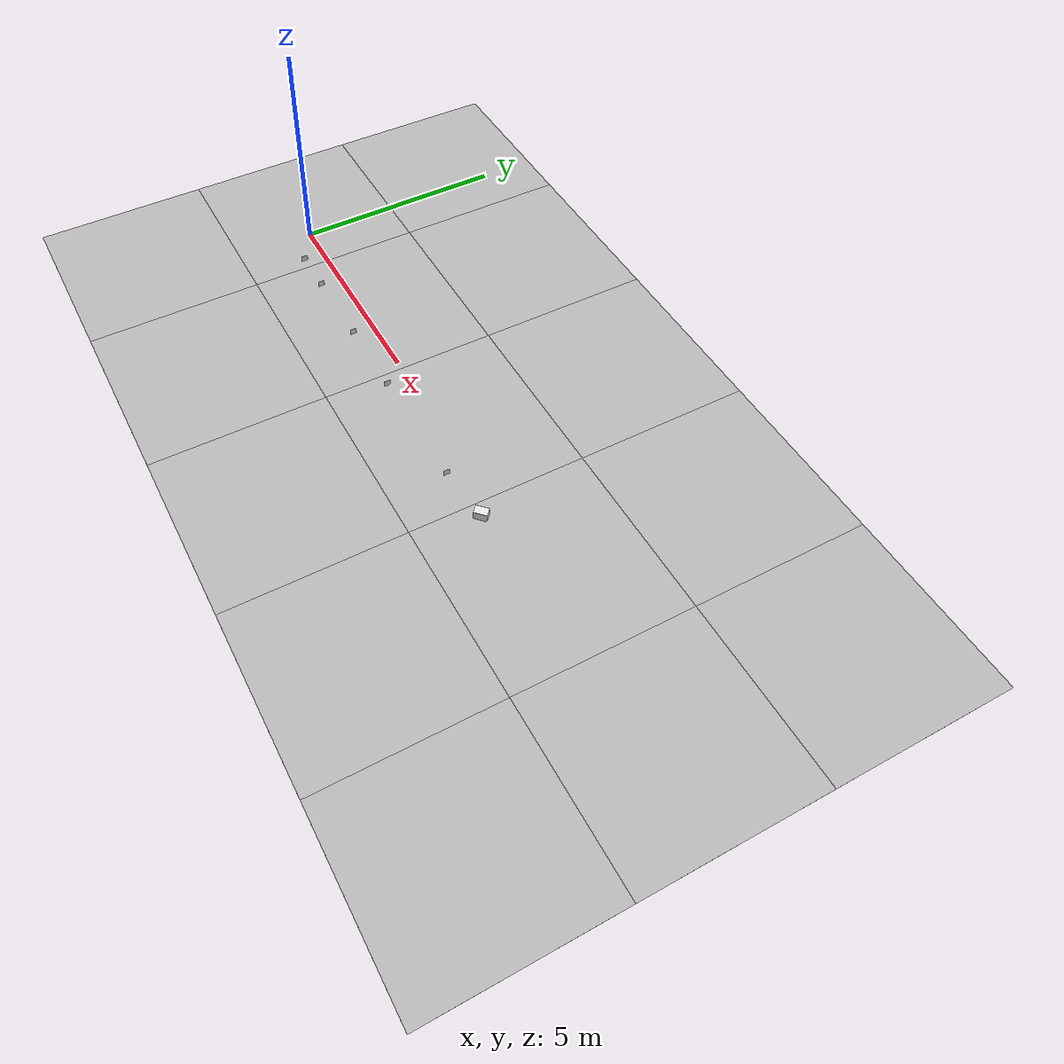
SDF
<sdf version='1.6'><world name='default'>
    <light name='sun_light' type='directional'>
      <pose frame=''>0 0 10 0 -0 0</pose>
      <diffuse>0.5 0.5 0.5 1</diffuse>
      <specular>0.1 0.1 0.1 1</specular>
      <direction>0.1 0.1 -0.9</direction>
      <attenuation>
        <range>20</range>
        <constant>0.5</constant>
        <linear>0.01</linear>
        <quadratic>0.001</quadratic>
      </attenuation>
      <cast_shadows>1</cast_shadows>
    </light>

    <model name='Tile/0-0'>
      <static>1</static>
      <link name='link'>
        <collision name='collision'>
          <geometry>
            <plane>
              <normal>0 0 1</normal>
              <size>4.096 4.096</size>
            </plane>
          </geometry>
          <surface>
            <friction>
              <ode>
                <mu>100</mu>
                <mu2>50</mu2>
              </ode>
              <torsional>
                <ode/>
              </torsional>
            </friction>
            <contact>
              <ode/>
            </contact>
            <bounce/>
          </surface>
          <max_contacts>10</max_contacts>
        </collision>
        <visual name='visual'>
          <cast_shadows>0</cast_shadows>
          <geometry>
            <plane>
              <normal>0 0 1</normal>
              <size>4.096 4.096</size>
            </plane>
          </geometry>
          <material>
            <script>
              <uri>file://materials/scripts</uri>
              <uri>file://materials/textures</uri>
              <name>Tile/5eab350b8220ac9944dbdfa4ac3288c7c17e24c3bf5df0dfcf6173d64dae00a1</name>
            </script>
          </material>
        </visual>
        <self_collide>0</self_collide>
        <enable_wind>0</enable_wind>
        <kinematic>0</kinematic>
      </link>
      <pose frame=''>-0.952 -3.9076349186104045 0 0 -0 0</pose>
    </model>

    <model name='Tile/0-1'>
      <static>1</static>
      <link name='link'>
        <collision name='collision'>
          <geometry>
            <plane>
              <normal>0 0 1</normal>
              <size>4.096 4.096</size>
            </plane>
          </geometry>
          <surface>
            <friction>
              <ode>
                <mu>100</mu>
                <mu2>50</mu2>
              </ode>
              <torsional>
                <ode/>
              </torsional>
            </friction>
            <contact>
              <ode/>
            </contact>
            <bounce/>
          </surface>
          <max_contacts>10</max_contacts>
        </collision>
        <visual name='visual'>
          <cast_shadows>0</cast_shadows>
          <geometry>
            <plane>
              <normal>0 0 1</normal>
              <size>4.096 4.096</size>
            </plane>
          </geometry>
          <material>
            <script>
              <uri>file://materials/scripts</uri>
              <uri>file://materials/textures</uri>
              <name>Tile/2d552338fa40c822ce19cb5e7ef2d2529c7908f0f60a8f3a88edab8c76e26915</name>
            </script>
          </material>
        </visual>
        <self_collide>0</self_collide>
        <enable_wind>0</enable_wind>
        <kinematic>0</kinematic>
      </link>
      <pose frame=''>-0.952 0.18836508138959562 0 0 -0 0</pose>
    </model>

    <model name='Tile/0-2'>
      <static>1</static>
      <link name='link'>
        <collision name='collision'>
          <geometry>
            <plane>
              <normal>0 0 1</normal>
              <size>4.096 4.096</size>
            </plane>
          </geometry>
          <surface>
            <friction>
              <ode>
                <mu>100</mu>
                <mu2>50</mu2>
              </ode>
              <torsional>
                <ode/>
              </torsional>
            </friction>
            <contact>
              <ode/>
            </contact>
            <bounce/>
          </surface>
          <max_contacts>10</max_contacts>
        </collision>
        <visual name='visual'>
          <cast_shadows>0</cast_shadows>
          <geometry>
            <plane>
              <normal>0 0 1</normal>
              <size>4.096 4.096</size>
            </plane>
          </geometry>
          <material>
            <script>
              <uri>file://materials/scripts</uri>
              <uri>file://materials/textures</uri>
              <name>Tile/5eab350b8220ac9944dbdfa4ac3288c7c17e24c3bf5df0dfcf6173d64dae00a1</name>
            </script>
          </material>
        </visual>
        <self_collide>0</self_collide>
        <enable_wind>0</enable_wind>
        <kinematic>0</kinematic>
      </link>
      <pose frame=''>-0.952 4.284365081389596 0 0 -0 0</pose>
    </model>

    <model name='Tile/1-0'>
      <static>1</static>
      <link name='link'>
        <collision name='collision'>
          <geometry>
            <plane>
              <normal>0 0 1</normal>
              <size>4.096 4.096</size>
            </plane>
          </geometry>
          <surface>
            <friction>
              <ode>
                <mu>100</mu>
                <mu2>50</mu2>
              </ode>
              <torsional>
                <ode/>
              </torsional>
            </friction>
            <contact>
              <ode/>
            </contact>
            <bounce/>
          </surface>
          <max_contacts>10</max_contacts>
        </collision>
        <visual name='visual'>
          <cast_shadows>0</cast_shadows>
          <geometry>
            <plane>
              <normal>0 0 1</normal>
              <size>4.096 4.096</size>
            </plane>
          </geometry>
          <material>
            <script>
              <uri>file://materials/scripts</uri>
              <uri>file://materials/textures</uri>
              <name>Tile/5eab350b8220ac9944dbdfa4ac3288c7c17e24c3bf5df0dfcf6173d64dae00a1</name>
            </script>
          </material>
        </visual>
        <self_collide>0</self_collide>
        <enable_wind>0</enable_wind>
        <kinematic>0</kinematic>
      </link>
      <pose frame=''>3.144 -3.9076349186104045 0 0 -0 0</pose>
    </model>

    <model name='Tile/1-1'>
      <static>1</static>
      <link name='link'>
        <collision name='collision'>
          <geometry>
            <plane>
              <normal>0 0 1</normal>
              <size>4.096 4.096</size>
            </plane>
          </geometry>
          <surface>
            <friction>
              <ode>
                <mu>100</mu>
                <mu2>50</mu2>
              </ode>
              <torsional>
                <ode/>
              </torsional>
            </friction>
            <contact>
              <ode/>
            </contact>
            <bounce/>
          </surface>
          <max_contacts>10</max_contacts>
        </collision>
        <visual name='visual'>
          <cast_shadows>0</cast_shadows>
          <geometry>
            <plane>
              <normal>0 0 1</normal>
              <size>4.096 4.096</size>
            </plane>
          </geometry>
          <material>
            <script>
              <uri>file://materials/scripts</uri>
              <uri>file://materials/textures</uri>
              <name>Tile/04a89a214bbdb7d8e5dc916c4c58ea20fc6bb218a6c467eb9421e69b413cdb35</name>
            </script>
          </material>
        </visual>
        <self_collide>0</self_collide>
        <enable_wind>0</enable_wind>
        <kinematic>0</kinematic>
      </link>
      <pose frame=''>3.144 0.18836508138959562 0 0 -0 0</pose>
    </model>

    <model name='Tile/1-2'>
      <static>1</static>
      <link name='link'>
        <collision name='collision'>
          <geometry>
            <plane>
              <normal>0 0 1</normal>
              <size>4.096 4.096</size>
            </plane>
          </geometry>
          <surface>
            <friction>
              <ode>
                <mu>100</mu>
                <mu2>50</mu2>
              </ode>
              <torsional>
                <ode/>
              </torsional>
            </friction>
            <contact>
              <ode/>
            </contact>
            <bounce/>
          </surface>
          <max_contacts>10</max_contacts>
        </collision>
        <visual name='visual'>
          <cast_shadows>0</cast_shadows>
          <geometry>
            <plane>
              <normal>0 0 1</normal>
              <size>4.096 4.096</size>
            </plane>
          </geometry>
          <material>
            <script>
              <uri>file://materials/scripts</uri>
              <uri>file://materials/textures</uri>
              <name>Tile/5eab350b8220ac9944dbdfa4ac3288c7c17e24c3bf5df0dfcf6173d64dae00a1</name>
            </script>
          </material>
        </visual>
        <self_collide>0</self_collide>
        <enable_wind>0</enable_wind>
        <kinematic>0</kinematic>
      </link>
      <pose frame=''>3.144 4.284365081389596 0 0 -0 0</pose>
    </model>

    <model name='Tile/2-0'>
      <static>1</static>
      <link name='link'>
        <collision name='collision'>
          <geometry>
            <plane>
              <normal>0 0 1</normal>
              <size>4.096 4.096</size>
            </plane>
          </geometry>
          <surface>
            <friction>
              <ode>
                <mu>100</mu>
                <mu2>50</mu2>
              </ode>
              <torsional>
                <ode/>
              </torsional>
            </friction>
            <contact>
              <ode/>
            </contact>
            <bounce/>
          </surface>
          <max_contacts>10</max_contacts>
        </collision>
        <visual name='visual'>
          <cast_shadows>0</cast_shadows>
          <geometry>
            <plane>
              <normal>0 0 1</normal>
              <size>4.096 4.096</size>
            </plane>
          </geometry>
          <material>
            <script>
              <uri>file://materials/scripts</uri>
              <uri>file://materials/textures</uri>
              <name>Tile/5eab350b8220ac9944dbdfa4ac3288c7c17e24c3bf5df0dfcf6173d64dae00a1</name>
            </script>
          </material>
        </visual>
        <self_collide>0</self_collide>
        <enable_wind>0</enable_wind>
        <kinematic>0</kinematic>
      </link>
      <pose frame=''>7.24 -3.9076349186104045 0 0 -0 0</pose>
    </model>

    <model name='Tile/2-1'>
      <static>1</static>
      <link name='link'>
        <collision name='collision'>
          <geometry>
            <plane>
              <normal>0 0 1</normal>
              <size>4.096 4.096</size>
            </plane>
          </geometry>
          <surface>
            <friction>
              <ode>
                <mu>100</mu>
                <mu2>50</mu2>
              </ode>
              <torsional>
                <ode/>
              </torsional>
            </friction>
            <contact>
              <ode/>
            </contact>
            <bounce/>
          </surface>
          <max_contacts>10</max_contacts>
        </collision>
        <visual name='visual'>
          <cast_shadows>0</cast_shadows>
          <geometry>
            <plane>
              <normal>0 0 1</normal>
              <size>4.096 4.096</size>
            </plane>
          </geometry>
          <material>
            <script>
              <uri>file://materials/scripts</uri>
              <uri>file://materials/textures</uri>
              <name>Tile/071ccc3d0d5de7755be05106b46700c323eb631b3edab60ff4e9981c3c8bb058</name>
            </script>
          </material>
        </visual>
        <self_collide>0</self_collide>
        <enable_wind>0</enable_wind>
        <kinematic>0</kinematic>
      </link>
      <pose frame=''>7.24 0.18836508138959562 0 0 -0 0</pose>
    </model>

    <model name='Tile/2-2'>
      <static>1</static>
      <link name='link'>
        <collision name='collision'>
          <geometry>
            <plane>
              <normal>0 0 1</normal>
              <size>4.096 4.096</size>
            </plane>
          </geometry>
          <surface>
            <friction>
              <ode>
                <mu>100</mu>
                <mu2>50</mu2>
              </ode>
              <torsional>
                <ode/>
              </torsional>
            </friction>
            <contact>
              <ode/>
            </contact>
            <bounce/>
          </surface>
          <max_contacts>10</max_contacts>
        </collision>
        <visual name='visual'>
          <cast_shadows>0</cast_shadows>
          <geometry>
            <plane>
              <normal>0 0 1</normal>
              <size>4.096 4.096</size>
            </plane>
          </geometry>
          <material>
            <script>
              <uri>file://materials/scripts</uri>
              <uri>file://materials/textures</uri>
              <name>Tile/5eab350b8220ac9944dbdfa4ac3288c7c17e24c3bf5df0dfcf6173d64dae00a1</name>
            </script>
          </material>
        </visual>
        <self_collide>0</self_collide>
        <enable_wind>0</enable_wind>
        <kinematic>0</kinematic>
      </link>
      <pose frame=''>7.24 4.284365081389596 0 0 -0 0</pose>
    </model>

    <model name='Tile/3-0'>
      <static>1</static>
      <link name='link'>
        <collision name='collision'>
          <geometry>
            <plane>
              <normal>0 0 1</normal>
              <size>4.096 4.096</size>
            </plane>
          </geometry>
          <surface>
            <friction>
              <ode>
                <mu>100</mu>
                <mu2>50</mu2>
              </ode>
              <torsional>
                <ode/>
              </torsional>
            </friction>
            <contact>
              <ode/>
            </contact>
            <bounce/>
          </surface>
          <max_contacts>10</max_contacts>
        </collision>
        <visual name='visual'>
          <cast_shadows>0</cast_shadows>
          <geometry>
            <plane>
              <normal>0 0 1</normal>
              <size>4.096 4.096</size>
            </plane>
          </geometry>
          <material>
            <script>
              <uri>file://materials/scripts</uri>
              <uri>file://materials/textures</uri>
              <name>Tile/65d0c58f73d0e8d3a3a58c4427a95aa465b5c38a5f23d6517020a09aef044702</name>
            </script>
          </material>
        </visual>
        <self_collide>0</self_collide>
        <enable_wind>0</enable_wind>
        <kinematic>0</kinematic>
      </link>
      <pose frame=''>11.336 -3.9076349186104045 0 0 -0 0</pose>
    </model>

    <model name='Tile/3-1'>
      <static>1</static>
      <link name='link'>
        <collision name='collision'>
          <geometry>
            <plane>
              <normal>0 0 1</normal>
              <size>4.096 4.096</size>
            </plane>
          </geometry>
          <surface>
            <friction>
              <ode>
                <mu>100</mu>
                <mu2>50</mu2>
              </ode>
              <torsional>
                <ode/>
              </torsional>
            </friction>
            <contact>
              <ode/>
            </contact>
            <bounce/>
          </surface>
          <max_contacts>10</max_contacts>
        </collision>
        <visual name='visual'>
          <cast_shadows>0</cast_shadows>
          <geometry>
            <plane>
              <normal>0 0 1</normal>
              <size>4.096 4.096</size>
            </plane>
          </geometry>
          <material>
            <script>
              <uri>file://materials/scripts</uri>
              <uri>file://materials/textures</uri>
              <name>Tile/9bc05998e025e19de9bfcc4cc30c5282a98f4f13467ae2cb02ee52a3167d1b46</name>
            </script>
          </material>
        </visual>
        <self_collide>0</self_collide>
        <enable_wind>0</enable_wind>
        <kinematic>0</kinematic>
      </link>
      <pose frame=''>11.336 0.18836508138959562 0 0 -0 0</pose>
    </model>

    <model name='Tile/3-2'>
      <static>1</static>
      <link name='link'>
        <collision name='collision'>
          <geometry>
            <plane>
              <normal>0 0 1</normal>
              <size>4.096 4.096</size>
            </plane>
          </geometry>
          <surface>
            <friction>
              <ode>
                <mu>100</mu>
                <mu2>50</mu2>
              </ode>
              <torsional>
                <ode/>
              </torsional>
            </friction>
            <contact>
              <ode/>
            </contact>
            <bounce/>
          </surface>
          <max_contacts>10</max_contacts>
        </collision>
        <visual name='visual'>
          <cast_shadows>0</cast_shadows>
          <geometry>
            <plane>
              <normal>0 0 1</normal>
              <size>4.096 4.096</size>
            </plane>
          </geometry>
          <material>
            <script>
              <uri>file://materials/scripts</uri>
              <uri>file://materials/textures</uri>
              <name>Tile/5eab350b8220ac9944dbdfa4ac3288c7c17e24c3bf5df0dfcf6173d64dae00a1</name>
            </script>
          </material>
        </visual>
        <self_collide>0</self_collide>
        <enable_wind>0</enable_wind>
        <kinematic>0</kinematic>
      </link>
      <pose frame=''>11.336 4.284365081389596 0 0 -0 0</pose>
    </model>

    <model name='Tile/4-0'>
      <static>1</static>
      <link name='link'>
        <collision name='collision'>
          <geometry>
            <plane>
              <normal>0 0 1</normal>
              <size>4.096 4.096</size>
            </plane>
          </geometry>
          <surface>
            <friction>
              <ode>
                <mu>100</mu>
                <mu2>50</mu2>
              </ode>
              <torsional>
                <ode/>
              </torsional>
            </friction>
            <contact>
              <ode/>
            </contact>
            <bounce/>
          </surface>
          <max_contacts>10</max_contacts>
        </collision>
        <visual name='visual'>
          <cast_shadows>0</cast_shadows>
          <geometry>
            <plane>
              <normal>0 0 1</normal>
              <size>4.096 4.096</size>
            </plane>
          </geometry>
          <material>
            <script>
              <uri>file://materials/scripts</uri>
              <uri>file://materials/textures</uri>
              <name>Tile/5eab350b8220ac9944dbdfa4ac3288c7c17e24c3bf5df0dfcf6173d64dae00a1</name>
            </script>
          </material>
        </visual>
        <self_collide>0</self_collide>
        <enable_wind>0</enable_wind>
        <kinematic>0</kinematic>
      </link>
      <pose frame=''>15.431999999999999 -3.9076349186104045 0 0 -0 0</pose>
    </model>

    <model name='Tile/4-1'>
      <static>1</static>
      <link name='link'>
        <collision name='collision'>
          <geometry>
            <plane>
              <normal>0 0 1</normal>
              <size>4.096 4.096</size>
            </plane>
          </geometry>
          <surface>
            <friction>
              <ode>
                <mu>100</mu>
                <mu2>50</mu2>
              </ode>
              <torsional>
                <ode/>
              </torsional>
            </friction>
            <contact>
              <ode/>
            </contact>
            <bounce/>
          </surface>
          <max_contacts>10</max_contacts>
        </collision>
        <visual name='visual'>
          <cast_shadows>0</cast_shadows>
          <geometry>
            <plane>
              <normal>0 0 1</normal>
              <size>4.096 4.096</size>
            </plane>
          </geometry>
          <material>
            <script>
              <uri>file://materials/scripts</uri>
              <uri>file://materials/textures</uri>
              <name>Tile/5eab350b8220ac9944dbdfa4ac3288c7c17e24c3bf5df0dfcf6173d64dae00a1</name>
            </script>
          </material>
        </visual>
        <self_collide>0</self_collide>
        <enable_wind>0</enable_wind>
        <kinematic>0</kinematic>
      </link>
      <pose frame=''>15.431999999999999 0.18836508138959562 0 0 -0 0</pose>
    </model>

    <model name='Tile/4-2'>
      <static>1</static>
      <link name='link'>
        <collision name='collision'>
          <geometry>
            <plane>
              <normal>0 0 1</normal>
              <size>4.096 4.096</size>
            </plane>
          </geometry>
          <surface>
            <friction>
              <ode>
                <mu>100</mu>
                <mu2>50</mu2>
              </ode>
              <torsional>
                <ode/>
              </torsional>
            </friction>
            <contact>
              <ode/>
            </contact>
            <bounce/>
          </surface>
          <max_contacts>10</max_contacts>
        </collision>
        <visual name='visual'>
          <cast_shadows>0</cast_shadows>
          <geometry>
            <plane>
              <normal>0 0 1</normal>
              <size>4.096 4.096</size>
            </plane>
          </geometry>
          <material>
            <script>
              <uri>file://materials/scripts</uri>
              <uri>file://materials/textures</uri>
              <name>Tile/5eab350b8220ac9944dbdfa4ac3288c7c17e24c3bf5df0dfcf6173d64dae00a1</name>
            </script>
          </material>
        </visual>
        <self_collide>0</self_collide>
        <enable_wind>0</enable_wind>
        <kinematic>0</kinematic>
      </link>
      <pose frame=''>15.431999999999999 4.284365081389596 0 0 -0 0</pose>
    </model>

    <model name='Obstacle/-47/0'>
      <pose frame=''>9.616726188957804 -0.3746951672795062 0.1 0 0 -0.7853981633974483</pose>
      <link name='link'>
        <inertial>
          <mass>10</mass>
          <inertia>
            <ixx>0.166667</ixx>
            <ixy>0</ixy>
            <ixz>0</ixz>
            <iyy>0.166667</iyy>
            <iyz>0</iyz>
            <izz>0.166667</izz>
          </inertia>
        </inertial>
        <collision name='collision'>
          <geometry>
            <box>
              <size>0.2 0.3 0.2</size>
            </box>
          </geometry>
          <max_contacts>10</max_contacts>
          <surface>
            <contact>
              <ode/>
            </contact>
            <bounce/>
            <friction>
              <torsional>
                <ode/>
              </torsional>
              <ode/>
            </friction>
          </surface>
        </collision>
        <visual name='visual'>
          <geometry>
            <box>
              <size>0.2 0.3 0.2</size>
            </box>
          </geometry>
          <material>
            <script>
              <name>Gazebo/White</name>
              <uri>file://media/materials/scripts/gazebo.material</uri>
            </script>
          </material>
        </visual>
        <self_collide>0</self_collide>
        <enable_wind>0</enable_wind>
        <kinematic>0</kinematic>
      </link>
    </model>

    <model name='Sign/-5'>
      <static>1</static>
      <link name='link'>
        <visual name='visual'>
          <cast_shadows>0</cast_shadows>
          <geometry>
            <plane>
              <normal>0 0 1</normal>
              <size>0.15 0.15</size>
            </plane>
          </geometry>
          <material>
            <script>
              <uri>file://materials/scripts</uri>
              <uri>file://materials/textures</uri>
              <name>Sign/stvo-274.1</name>
            </script>
          </material>
        </visual>
        <self_collide>0</self_collide>
        <enable_wind>0</enable_wind>
        <kinematic>0</kinematic>
      </link>
      <pose frame=''>1.005 -0.55 0.22499999999999998 1.5707963267948966 0 4.71238898038469</pose>
    </model>

    <model name='Sign/-10'>
      <static>1</static>
      <link name='link'>
        <visual name='visual'>
          <cast_shadows>0</cast_shadows>
          <geometry>
            <plane>
              <normal>0 0 1</normal>
              <size>0.15 0.15</size>
            </plane>
          </geometry>
          <material>
            <script>
              <uri>file://materials/scripts</uri>
              <uri>file://materials/textures</uri>
              <name>Sign/stvo-350-10</name>
            </script>
          </material>
        </visual>
        <self_collide>0</self_collide>
        <enable_wind>0</enable_wind>
        <kinematic>0</kinematic>
      </link>
      <pose frame=''>2.0149999999999997 -0.55 0.22499999999999998 1.5707963267948966 0 4.71238898038469</pose>
    </model>

    <model name='Sign/-20'>
      <static>1</static>
      <link name='link'>
        <visual name='visual'>
          <cast_shadows>0</cast_shadows>
          <geometry>
            <plane>
              <normal>0 0 1</normal>
              <size>0.15 0.15</size>
            </plane>
          </geometry>
          <material>
            <script>
              <uri>file://materials/scripts</uri>
              <uri>file://materials/textures</uri>
              <name>Sign/stvo-350-10</name>
            </script>
          </material>
        </visual>
        <self_collide>0</self_collide>
        <enable_wind>0</enable_wind>
        <kinematic>0</kinematic>
      </link>
      <pose frame=''>3.8249999999999993 -0.55 0.22499999999999998 1.5707963267948966 0 4.71238898038469</pose>
    </model>

    <model name='Sign/-30'>
      <static>1</static>
      <link name='link'>
        <visual name='visual'>
          <cast_shadows>0</cast_shadows>
          <geometry>
            <plane>
              <normal>0 0 1</normal>
              <size>0.15 0.15</size>
            </plane>
          </geometry>
          <material>
            <script>
              <uri>file://materials/scripts</uri>
              <uri>file://materials/textures</uri>
              <name>Sign/stvo-350-10</name>
            </script>
          </material>
        </visual>
        <self_collide>0</self_collide>
        <enable_wind>0</enable_wind>
        <kinematic>0</kinematic>
      </link>
      <pose frame=''>5.635 -0.55 0.22499999999999998 1.5707963267948966 0 4.71238898038469</pose>
    </model>

    <model name='Sign/-42'>
      <static>1</static>
      <link name='link'>
        <visual name='visual'>
          <cast_shadows>0</cast_shadows>
          <geometry>
            <plane>
              <normal>0 0 1</normal>
              <size>0.15 0.15</size>
            </plane>
          </geometry>
          <material>
            <script>
              <uri>file://materials/scripts</uri>
              <uri>file://materials/textures</uri>
              <name>Sign/stvo-274.2</name>
            </script>
          </material>
        </visual>
        <self_collide>0</self_collide>
        <enable_wind>0</enable_wind>
        <kinematic>0</kinematic>
      </link>
      <pose frame=''>8.445000000000002 -0.55 0.22499999999999998 1.5707963267948966 0 4.71238898038469</pose>
    </model>
    </world></sdf>
